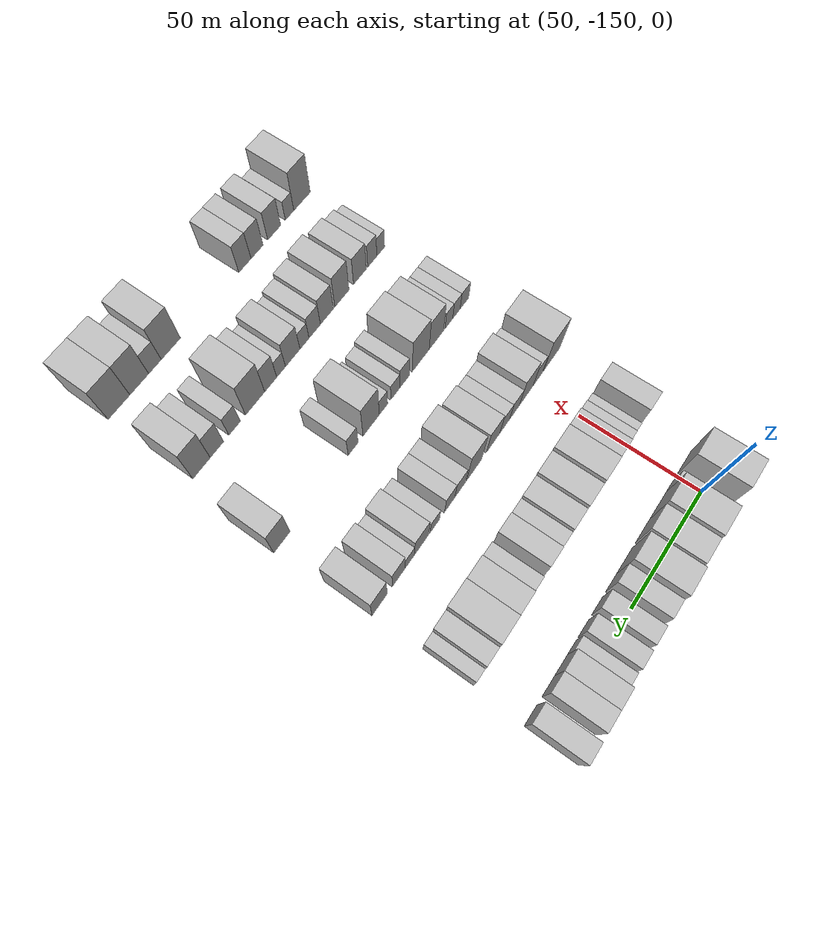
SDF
<sdf version="1.6">
 <world name="default">
  <model name="building_51">
   <static>1</static>
   <pose>50.0000 -155.9210 0 0.000000 0.000000 0.000000</pose>
   <link name="link">
    <pose>0 0 12.00 0 0 0</pose>
    <collision name="collision"><geometry><box><size>20.0000 11.7579 24.0000</size></box></geometry></collision>
    <visual name="visual">
     <cast_shadows>0</cast_shadows>
     <geometry><box><size>20.0000 11.7579 24.0000</size></box></geometry>
     <material>
      <script>
       <uri>model://HANNAS_wall/materials/scripts</uri>
       <uri>model://HANNAS_wall/materials/textures</uri>
       <name>vrc/HANNAS_wall</name>
      </script>
     </material>
    </visual>
   </link>
  </model>
  <model name="building_52">
   <static>1</static>
   <pose>50.0000 -145.2475 0 0.000000 0.000000 0.000000</pose>
   <link name="link">
    <pose>0 0 6.00 0 0 0</pose>
    <collision name="collision"><geometry><box><size>20.0000 5.5891 12.0000</size></box></geometry></collision>
    <visual name="visual">
     <cast_shadows>0</cast_shadows>
     <geometry><box><size>20.0000 5.5891 12.0000</size></box></geometry>
     <material>
      <script>
       <uri>model://HANNAS_wall/materials/scripts</uri>
       <uri>model://HANNAS_wall/materials/textures</uri>
       <name>vrc/HANNAS_wall</name>
      </script>
     </material>
    </visual>
   </link>
  </model>
  <model name="building_53">
   <static>1</static>
   <pose>50.0000 -136.5552 0 0.000000 0.000000 0.000000</pose>
   <link name="link">
    <pose>0 0 12.00 0 0 0</pose>
    <collision name="collision"><geometry><box><size>20.0000 11.7955 24.0000</size></box></geometry></collision>
    <visual name="visual">
     <cast_shadows>0</cast_shadows>
     <geometry><box><size>20.0000 11.7955 24.0000</size></box></geometry>
     <material>
      <script>
       <uri>model://HANNAS_wall/materials/scripts</uri>
       <uri>model://HANNAS_wall/materials/textures</uri>
       <name>vrc/HANNAS_wall</name>
      </script>
     </material>
    </visual>
   </link>
  </model>
  <model name="building_54">
   <static>1</static>
   <pose>50.0000 -125.5416 0 0.000000 0.000000 0.000000</pose>
   <link name="link">
    <pose>0 0 10.50 0 0 0</pose>
    <collision name="collision"><geometry><box><size>20.0000 10.2317 21.0000</size></box></geometry></collision>
    <visual name="visual">
     <cast_shadows>0</cast_shadows>
     <geometry><box><size>20.0000 10.2317 21.0000</size></box></geometry>
     <material>
      <script>
       <uri>model://HANNAS_wall/materials/scripts</uri>
       <uri>model://HANNAS_wall/materials/textures</uri>
       <name>vrc/HANNAS_wall</name>
      </script>
     </material>
    </visual>
   </link>
  </model>
  <model name="building_55">
   <static>1</static>
   <pose>50.0000 -112.9191 0 0.000000 0.000000 0.000000</pose>
   <link name="link">
    <pose>0 0 12.00 0 0 0</pose>
    <collision name="collision"><geometry><box><size>20.0000 11.0133 24.0000</size></box></geometry></collision>
    <visual name="visual">
     <cast_shadows>0</cast_shadows>
     <geometry><box><size>20.0000 11.0133 24.0000</size></box></geometry>
     <material>
      <script>
       <uri>model://HANNAS_wall/materials/scripts</uri>
       <uri>model://HANNAS_wall/materials/textures</uri>
       <name>vrc/HANNAS_wall</name>
      </script>
     </material>
    </visual>
   </link>
  </model>
  <model name="building_56">
   <static>1</static>
   <pose>50.0000 -103.6755 0 0.000000 0.000000 0.000000</pose>
   <link name="link">
    <pose>0 0 9.00 0 0 0</pose>
    <collision name="collision"><geometry><box><size>20.0000 7.4738 18.0000</size></box></geometry></collision>
    <visual name="visual">
     <cast_shadows>0</cast_shadows>
     <geometry><box><size>20.0000 7.4738 18.0000</size></box></geometry>
     <material>
      <script>
       <uri>model://HANNAS_wall/materials/scripts</uri>
       <uri>model://HANNAS_wall/materials/textures</uri>
       <name>vrc/HANNAS_wall</name>
      </script>
     </material>
    </visual>
   </link>
  </model>
  <model name="building_57">
   <static>1</static>
   <pose>50.0000 -94.3220 0 0.000000 0.000000 0.000000</pose>
   <link name="link">
    <pose>0 0 7.50 0 0 0</pose>
    <collision name="collision"><geometry><box><size>20.0000 7.2331 15.0000</size></box></geometry></collision>
    <visual name="visual">
     <cast_shadows>0</cast_shadows>
     <geometry><box><size>20.0000 7.2331 15.0000</size></box></geometry>
     <material>
      <script>
       <uri>model://HANNAS_wall/materials/scripts</uri>
       <uri>model://HANNAS_wall/materials/textures</uri>
       <name>vrc/HANNAS_wall</name>
      </script>
     </material>
    </visual>
   </link>
  </model>
  <model name="building_58">
   <static>1</static>
   <pose>50.0000 -85.2054 0 0.000000 0.000000 0.000000</pose>
   <link name="link">
    <pose>0 0 7.50 0 0 0</pose>
    <collision name="collision"><geometry><box><size>20.0000 7.0001 15.0000</size></box></geometry></collision>
    <visual name="visual">
     <cast_shadows>0</cast_shadows>
     <geometry><box><size>20.0000 7.0001 15.0000</size></box></geometry>
     <material>
      <script>
       <uri>model://HANNAS_wall/materials/scripts</uri>
       <uri>model://HANNAS_wall/materials/textures</uri>
       <name>vrc/HANNAS_wall</name>
      </script>
     </material>
    </visual>
   </link>
  </model>
  <model name="building_59">
   <static>1</static>
   <pose>50.0000 -77.8246 0 0.000000 0.000000 0.000000</pose>
   <link name="link">
    <pose>0 0 6.00 0 0 0</pose>
    <collision name="collision"><geometry><box><size>20.0000 5.7614 12.0000</size></box></geometry></collision>
    <visual name="visual">
     <cast_shadows>0</cast_shadows>
     <geometry><box><size>20.0000 5.7614 12.0000</size></box></geometry>
     <material>
      <script>
       <uri>model://HANNAS_wall/materials/scripts</uri>
       <uri>model://HANNAS_wall/materials/textures</uri>
       <name>vrc/HANNAS_wall</name>
      </script>
     </material>
    </visual>
   </link>
  </model>
  <model name="building_60">
   <static>1</static>
   <pose>50.0000 -70.9079 0 0.000000 0.000000 0.000000</pose>
   <link name="link">
    <pose>0 0 9.00 0 0 0</pose>
    <collision name="collision"><geometry><box><size>20.0000 8.0721 18.0000</size></box></geometry></collision>
    <visual name="visual">
     <cast_shadows>0</cast_shadows>
     <geometry><box><size>20.0000 8.0721 18.0000</size></box></geometry>
     <material>
      <script>
       <uri>model://HANNAS_wall/materials/scripts</uri>
       <uri>model://HANNAS_wall/materials/textures</uri>
       <name>vrc/HANNAS_wall</name>
      </script>
     </material>
    </visual>
   </link>
  </model>
  <model name="building_61">
   <static>1</static>
   <pose>50.0000 -62.8713 0 0.000000 0.000000 0.000000</pose>
   <link name="link">
    <pose>0 0 9.00 0 0 0</pose>
    <collision name="collision"><geometry><box><size>20.0000 8.0012 18.0000</size></box></geometry></collision>
    <visual name="visual">
     <cast_shadows>0</cast_shadows>
     <geometry><box><size>20.0000 8.0012 18.0000</size></box></geometry>
     <material>
      <script>
       <uri>model://HANNAS_wall/materials/scripts</uri>
       <uri>model://HANNAS_wall/materials/textures</uri>
       <name>vrc/HANNAS_wall</name>
      </script>
     </material>
    </visual>
   </link>
  </model>
  <model name="building_62">
   <static>1</static>
   <pose>50.0000 -51.9323 0 0.000000 0.000000 0.000000</pose>
   <link name="link">
    <pose>0 0 9.00 0 0 0</pose>
    <collision name="collision"><geometry><box><size>20.0000 7.8768 18.0000</size></box></geometry></collision>
    <visual name="visual">
     <cast_shadows>0</cast_shadows>
     <geometry><box><size>20.0000 7.8768 18.0000</size></box></geometry>
     <material>
      <script>
       <uri>model://HANNAS_wall/materials/scripts</uri>
       <uri>model://HANNAS_wall/materials/textures</uri>
       <name>vrc/HANNAS_wall</name>
      </script>
     </material>
    </visual>
   </link>
  </model>
  <model name="building_187">
   <static>1</static>
   <pose>90.0000 -162.2411 0 0.000000 0.000000 0.000000</pose>
   <link name="link">
    <pose>0 0 9.00 0 0 0</pose>
    <collision name="collision"><geometry><box><size>20.0000 8.2586 18.0000</size></box></geometry></collision>
    <visual name="visual">
     <cast_shadows>0</cast_shadows>
     <geometry><box><size>20.0000 8.2586 18.0000</size></box></geometry>
     <material>
      <script>
       <uri>model://HANNAS_wall/materials/scripts</uri>
       <uri>model://HANNAS_wall/materials/textures</uri>
       <name>vrc/HANNAS_wall</name>
      </script>
     </material>
    </visual>
   </link>
  </model>
  <model name="building_188">
   <static>1</static>
   <pose>90.0000 -152.6742 0 0.000000 0.000000 0.000000</pose>
   <link name="link">
    <pose>0 0 6.00 0 0 0</pose>
    <collision name="collision"><geometry><box><size>20.0000 4.8751 12.0000</size></box></geometry></collision>
    <visual name="visual">
     <cast_shadows>0</cast_shadows>
     <geometry><box><size>20.0000 4.8751 12.0000</size></box></geometry>
     <material>
      <script>
       <uri>model://HANNAS_wall/materials/scripts</uri>
       <uri>model://HANNAS_wall/materials/textures</uri>
       <name>vrc/HANNAS_wall</name>
      </script>
     </material>
    </visual>
   </link>
  </model>
  <model name="building_189">
   <static>1</static>
   <pose>90.0000 -146.9867 0 0.000000 0.000000 0.000000</pose>
   <link name="link">
    <pose>0 0 7.50 0 0 0</pose>
    <collision name="collision"><geometry><box><size>20.0000 6.5000 15.0000</size></box></geometry></collision>
    <visual name="visual">
     <cast_shadows>0</cast_shadows>
     <geometry><box><size>20.0000 6.5000 15.0000</size></box></geometry>
     <material>
      <script>
       <uri>model://HANNAS_wall/materials/scripts</uri>
       <uri>model://HANNAS_wall/materials/textures</uri>
       <name>vrc/HANNAS_wall</name>
      </script>
     </material>
    </visual>
   </link>
  </model>
  <model name="building_190">
   <static>1</static>
   <pose>90.0000 -139.3783 0 0.000000 0.000000 0.000000</pose>
   <link name="link">
    <pose>0 0 10.50 0 0 0</pose>
    <collision name="collision"><geometry><box><size>20.0000 8.7168 21.0000</size></box></geometry></collision>
    <visual name="visual">
     <cast_shadows>0</cast_shadows>
     <geometry><box><size>20.0000 8.7168 21.0000</size></box></geometry>
     <material>
      <script>
       <uri>model://HANNAS_wall/materials/scripts</uri>
       <uri>model://HANNAS_wall/materials/textures</uri>
       <name>vrc/HANNAS_wall</name>
      </script>
     </material>
    </visual>
   </link>
  </model>
  <model name="building_191">
   <static>1</static>
   <pose>90.0000 -129.9871 0 0.000000 0.000000 0.000000</pose>
   <link name="link">
    <pose>0 0 12.00 0 0 0</pose>
    <collision name="collision"><geometry><box><size>20.0000 10.0657 24.0000</size></box></geometry></collision>
    <visual name="visual">
     <cast_shadows>0</cast_shadows>
     <geometry><box><size>20.0000 10.0657 24.0000</size></box></geometry>
     <material>
      <script>
       <uri>model://HANNAS_wall/materials/scripts</uri>
       <uri>model://HANNAS_wall/materials/textures</uri>
       <name>vrc/HANNAS_wall</name>
      </script>
     </material>
    </visual>
   </link>
  </model>
  <model name="building_192">
   <static>1</static>
   <pose>90.0000 -120.2093 0 0.000000 0.000000 0.000000</pose>
   <link name="link">
    <pose>0 0 10.50 0 0 0</pose>
    <collision name="collision"><geometry><box><size>20.0000 9.4899 21.0000</size></box></geometry></collision>
    <visual name="visual">
     <cast_shadows>0</cast_shadows>
     <geometry><box><size>20.0000 9.4899 21.0000</size></box></geometry>
     <material>
      <script>
       <uri>model://HANNAS_wall/materials/scripts</uri>
       <uri>model://HANNAS_wall/materials/textures</uri>
       <name>vrc/HANNAS_wall</name>
      </script>
     </material>
    </visual>
   </link>
  </model>
  <model name="building_193">
   <static>1</static>
   <pose>90.0000 -111.1364 0 0.000000 0.000000 0.000000</pose>
   <link name="link">
    <pose>0 0 9.00 0 0 0</pose>
    <collision name="collision"><geometry><box><size>20.0000 8.6558 18.0000</size></box></geometry></collision>
    <visual name="visual">
     <cast_shadows>0</cast_shadows>
     <geometry><box><size>20.0000 8.6558 18.0000</size></box></geometry>
     <material>
      <script>
       <uri>model://HANNAS_wall/materials/scripts</uri>
       <uri>model://HANNAS_wall/materials/textures</uri>
       <name>vrc/HANNAS_wall</name>
      </script>
     </material>
    </visual>
   </link>
  </model>
  <model name="building_194">
   <static>1</static>
   <pose>90.0000 -103.3717 0 0.000000 0.000000 0.000000</pose>
   <link name="link">
    <pose>0 0 7.50 0 0 0</pose>
    <collision name="collision"><geometry><box><size>20.0000 6.8735 15.0000</size></box></geometry></collision>
    <visual name="visual">
     <cast_shadows>0</cast_shadows>
     <geometry><box><size>20.0000 6.8735 15.0000</size></box></geometry>
     <material>
      <script>
       <uri>model://HANNAS_wall/materials/scripts</uri>
       <uri>model://HANNAS_wall/materials/textures</uri>
       <name>vrc/HANNAS_wall</name>
      </script>
     </material>
    </visual>
   </link>
  </model>
  <model name="building_195">
   <static>1</static>
   <pose>90.0000 -95.8698 0 0.000000 0.000000 0.000000</pose>
   <link name="link">
    <pose>0 0 9.00 0 0 0</pose>
    <collision name="collision"><geometry><box><size>20.0000 8.1304 18.0000</size></box></geometry></collision>
    <visual name="visual">
     <cast_shadows>0</cast_shadows>
     <geometry><box><size>20.0000 8.1304 18.0000</size></box></geometry>
     <material>
      <script>
       <uri>model://HANNAS_wall/materials/scripts</uri>
       <uri>model://HANNAS_wall/materials/textures</uri>
       <name>vrc/HANNAS_wall</name>
      </script>
     </material>
    </visual>
   </link>
  </model>
  <model name="building_196">
   <static>1</static>
   <pose>90.0000 -85.3242 0 0.000000 0.000000 0.000000</pose>
   <link name="link">
    <pose>0 0 7.50 0 0 0</pose>
    <collision name="collision"><geometry><box><size>20.0000 6.9608 15.0000</size></box></geometry></collision>
    <visual name="visual">
     <cast_shadows>0</cast_shadows>
     <geometry><box><size>20.0000 6.9608 15.0000</size></box></geometry>
     <material>
      <script>
       <uri>model://HANNAS_wall/materials/scripts</uri>
       <uri>model://HANNAS_wall/materials/textures</uri>
       <name>vrc/HANNAS_wall</name>
      </script>
     </material>
    </visual>
   </link>
  </model>
  <model name="building_197">
   <static>1</static>
   <pose>90.0000 -77.0051 0 0.000000 0.000000 0.000000</pose>
   <link name="link">
    <pose>0 0 10.50 0 0 0</pose>
    <collision name="collision"><geometry><box><size>20.0000 9.6773 21.0000</size></box></geometry></collision>
    <visual name="visual">
     <cast_shadows>0</cast_shadows>
     <geometry><box><size>20.0000 9.6773 21.0000</size></box></geometry>
     <material>
      <script>
       <uri>model://HANNAS_wall/materials/scripts</uri>
       <uri>model://HANNAS_wall/materials/textures</uri>
       <name>vrc/HANNAS_wall</name>
      </script>
     </material>
    </visual>
   </link>
  </model>
  <model name="building_198">
   <static>1</static>
   <pose>90.0000 -66.7771 0 0.000000 0.000000 0.000000</pose>
   <link name="link">
    <pose>0 0 12.00 0 0 0</pose>
    <collision name="collision"><geometry><box><size>20.0000 10.7786 24.0000</size></box></geometry></collision>
    <visual name="visual">
     <cast_shadows>0</cast_shadows>
     <geometry><box><size>20.0000 10.7786 24.0000</size></box></geometry>
     <material>
      <script>
       <uri>model://HANNAS_wall/materials/scripts</uri>
       <uri>model://HANNAS_wall/materials/textures</uri>
       <name>vrc/HANNAS_wall</name>
      </script>
     </material>
    </visual>
   </link>
  </model>
  <model name="building_199">
   <static>1</static>
   <pose>90.0000 -57.7729 0 0.000000 0.000000 0.000000</pose>
   <link name="link">
    <pose>0 0 9.00 0 0 0</pose>
    <collision name="collision"><geometry><box><size>20.0000 7.2299 18.0000</size></box></geometry></collision>
    <visual name="visual">
     <cast_shadows>0</cast_shadows>
     <geometry><box><size>20.0000 7.2299 18.0000</size></box></geometry>
     <material>
      <script>
       <uri>model://HANNAS_wall/materials/scripts</uri>
       <uri>model://HANNAS_wall/materials/textures</uri>
       <name>vrc/HANNAS_wall</name>
      </script>
     </material>
    </visual>
   </link>
  </model>
  <model name="building_200">
   <static>1</static>
   <pose>90.0000 -51.6301 0 0.000000 0.000000 0.000000</pose>
   <link name="link">
    <pose>0 0 6.00 0 0 0</pose>
    <collision name="collision"><geometry><box><size>20.0000 5.0556 12.0000</size></box></geometry></collision>
    <visual name="visual">
     <cast_shadows>0</cast_shadows>
     <geometry><box><size>20.0000 5.0556 12.0000</size></box></geometry>
     <material>
      <script>
       <uri>model://HANNAS_wall/materials/scripts</uri>
       <uri>model://HANNAS_wall/materials/textures</uri>
       <name>vrc/HANNAS_wall</name>
      </script>
     </material>
    </visual>
   </link>
  </model>
  <model name="building_326">
   <static>1</static>
   <pose>130.0000 -163.6654 0 0.000000 0.000000 0.000000</pose>
   <link name="link">
    <pose>0 0 12.00 0 0 0</pose>
    <collision name="collision"><geometry><box><size>20.0000 11.8290 24.0000</size></box></geometry></collision>
    <visual name="visual">
     <cast_shadows>0</cast_shadows>
     <geometry><box><size>20.0000 11.8290 24.0000</size></box></geometry>
     <material>
      <script>
       <uri>model://HANNAS_wall/materials/scripts</uri>
       <uri>model://HANNAS_wall/materials/textures</uri>
       <name>vrc/HANNAS_wall</name>
      </script>
     </material>
    </visual>
   </link>
  </model>
  <model name="building_327">
   <static>1</static>
   <pose>130.0000 -153.5609 0 0.000000 0.000000 0.000000</pose>
   <link name="link">
    <pose>0 0 7.50 0 0 0</pose>
    <collision name="collision"><geometry><box><size>20.0000 6.3800 15.0000</size></box></geometry></collision>
    <visual name="visual">
     <cast_shadows>0</cast_shadows>
     <geometry><box><size>20.0000 6.3800 15.0000</size></box></geometry>
     <material>
      <script>
       <uri>model://HANNAS_wall/materials/scripts</uri>
       <uri>model://HANNAS_wall/materials/textures</uri>
       <name>vrc/HANNAS_wall</name>
      </script>
     </material>
    </visual>
   </link>
  </model>
  <model name="building_328">
   <static>1</static>
   <pose>130.0000 -145.5549 0 0.000000 0.000000 0.000000</pose>
   <link name="link">
    <pose>0 0 10.50 0 0 0</pose>
    <collision name="collision"><geometry><box><size>20.0000 9.6319 21.0000</size></box></geometry></collision>
    <visual name="visual">
     <cast_shadows>0</cast_shadows>
     <geometry><box><size>20.0000 9.6319 21.0000</size></box></geometry>
     <material>
      <script>
       <uri>model://HANNAS_wall/materials/scripts</uri>
       <uri>model://HANNAS_wall/materials/textures</uri>
       <name>vrc/HANNAS_wall</name>
      </script>
     </material>
    </visual>
   </link>
  </model>
  <model name="building_329">
   <static>1</static>
   <pose>130.0000 -137.3387 0 0.000000 0.000000 0.000000</pose>
   <link name="link">
    <pose>0 0 7.50 0 0 0</pose>
    <collision name="collision"><geometry><box><size>20.0000 6.8004 15.0000</size></box></geometry></collision>
    <visual name="visual">
     <cast_shadows>0</cast_shadows>
     <geometry><box><size>20.0000 6.8004 15.0000</size></box></geometry>
     <material>
      <script>
       <uri>model://HANNAS_wall/materials/scripts</uri>
       <uri>model://HANNAS_wall/materials/textures</uri>
       <name>vrc/HANNAS_wall</name>
      </script>
     </material>
    </visual>
   </link>
  </model>
  <model name="building_330">
   <static>1</static>
   <pose>130.0000 -130.6627 0 0.000000 0.000000 0.000000</pose>
   <link name="link">
    <pose>0 0 7.50 0 0 0</pose>
    <collision name="collision"><geometry><box><size>20.0000 6.5516 15.0000</size></box></geometry></collision>
    <visual name="visual">
     <cast_shadows>0</cast_shadows>
     <geometry><box><size>20.0000 6.5516 15.0000</size></box></geometry>
     <material>
      <script>
       <uri>model://HANNAS_wall/materials/scripts</uri>
       <uri>model://HANNAS_wall/materials/textures</uri>
       <name>vrc/HANNAS_wall</name>
      </script>
     </material>
    </visual>
   </link>
  </model>
  <model name="building_331">
   <static>1</static>
   <pose>130.0000 -122.9548 0 0.000000 0.000000 0.000000</pose>
   <link name="link">
    <pose>0 0 9.00 0 0 0</pose>
    <collision name="collision"><geometry><box><size>20.0000 8.8642 18.0000</size></box></geometry></collision>
    <visual name="visual">
     <cast_shadows>0</cast_shadows>
     <geometry><box><size>20.0000 8.8642 18.0000</size></box></geometry>
     <material>
      <script>
       <uri>model://HANNAS_wall/materials/scripts</uri>
       <uri>model://HANNAS_wall/materials/textures</uri>
       <name>vrc/HANNAS_wall</name>
      </script>
     </material>
    </visual>
   </link>
  </model>
  <model name="building_332">
   <static>1</static>
   <pose>130.0000 -110.6508 0 0.000000 0.000000 0.000000</pose>
   <link name="link">
    <pose>0 0 12.00 0 0 0</pose>
    <collision name="collision"><geometry><box><size>20.0000 9.7439 24.0000</size></box></geometry></collision>
    <visual name="visual">
     <cast_shadows>0</cast_shadows>
     <geometry><box><size>20.0000 9.7439 24.0000</size></box></geometry>
     <material>
      <script>
       <uri>model://HANNAS_wall/materials/scripts</uri>
       <uri>model://HANNAS_wall/materials/textures</uri>
       <name>vrc/HANNAS_wall</name>
      </script>
     </material>
    </visual>
   </link>
  </model>
  <model name="building_333">
   <static>1</static>
   <pose>130.0000 -101.4452 0 0.000000 0.000000 0.000000</pose>
   <link name="link">
    <pose>0 0 7.50 0 0 0</pose>
    <collision name="collision"><geometry><box><size>20.0000 6.6672 15.0000</size></box></geometry></collision>
    <visual name="visual">
     <cast_shadows>0</cast_shadows>
     <geometry><box><size>20.0000 6.6672 15.0000</size></box></geometry>
     <material>
      <script>
       <uri>model://HANNAS_wall/materials/scripts</uri>
       <uri>model://HANNAS_wall/materials/textures</uri>
       <name>vrc/HANNAS_wall</name>
      </script>
     </material>
    </visual>
   </link>
  </model>
  <model name="building_334">
   <static>1</static>
   <pose>130.0000 -94.8186 0 0.000000 0.000000 0.000000</pose>
   <link name="link">
    <pose>0 0 7.50 0 0 0</pose>
    <collision name="collision"><geometry><box><size>20.0000 6.5860 15.0000</size></box></geometry></collision>
    <visual name="visual">
     <cast_shadows>0</cast_shadows>
     <geometry><box><size>20.0000 6.5860 15.0000</size></box></geometry>
     <material>
      <script>
       <uri>model://HANNAS_wall/materials/scripts</uri>
       <uri>model://HANNAS_wall/materials/textures</uri>
       <name>vrc/HANNAS_wall</name>
      </script>
     </material>
    </visual>
   </link>
  </model>
  <model name="building_335">
   <static>1</static>
   <pose>130.0000 -85.6121 0 0.000000 0.000000 0.000000</pose>
   <link name="link">
    <pose>0 0 6.00 0 0 0</pose>
    <collision name="collision"><geometry><box><size>20.0000 5.8269 12.0000</size></box></geometry></collision>
    <visual name="visual">
     <cast_shadows>0</cast_shadows>
     <geometry><box><size>20.0000 5.8269 12.0000</size></box></geometry>
     <material>
      <script>
       <uri>model://HANNAS_wall/materials/scripts</uri>
       <uri>model://HANNAS_wall/materials/textures</uri>
       <name>vrc/HANNAS_wall</name>
      </script>
     </material>
    </visual>
   </link>
  </model>
  <model name="building_336">
   <static>1</static>
   <pose>130.0000 -77.3997 0 0.000000 0.000000 0.000000</pose>
   <link name="link">
    <pose>0 0 9.00 0 0 0</pose>
    <collision name="collision"><geometry><box><size>20.0000 8.5981 18.0000</size></box></geometry></collision>
    <visual name="visual">
     <cast_shadows>0</cast_shadows>
     <geometry><box><size>20.0000 8.5981 18.0000</size></box></geometry>
     <material>
      <script>
       <uri>model://HANNAS_wall/materials/scripts</uri>
       <uri>model://HANNAS_wall/materials/textures</uri>
       <name>vrc/HANNAS_wall</name>
      </script>
     </material>
    </visual>
   </link>
  </model>
  <model name="building_337">
   <static>1</static>
   <pose>130.0000 -70.2908 0 0.000000 0.000000 0.000000</pose>
   <link name="link">
    <pose>0 0 6.00 0 0 0</pose>
    <collision name="collision"><geometry><box><size>20.0000 5.6197 12.0000</size></box></geometry></collision>
    <visual name="visual">
     <cast_shadows>0</cast_shadows>
     <geometry><box><size>20.0000 5.6197 12.0000</size></box></geometry>
     <material>
      <script>
       <uri>model://HANNAS_wall/materials/scripts</uri>
       <uri>model://HANNAS_wall/materials/textures</uri>
       <name>vrc/HANNAS_wall</name>
      </script>
     </material>
    </visual>
   </link>
  </model>
  <model name="building_338">
   <static>1</static>
   <pose>130.0000 -63.7363 0 0.000000 0.000000 0.000000</pose>
   <link name="link">
    <pose>0 0 9.00 0 0 0</pose>
    <collision name="collision"><geometry><box><size>20.0000 7.4892 18.0000</size></box></geometry></collision>
    <visual name="visual">
     <cast_shadows>0</cast_shadows>
     <geometry><box><size>20.0000 7.4892 18.0000</size></box></geometry>
     <material>
      <script>
       <uri>model://HANNAS_wall/materials/scripts</uri>
       <uri>model://HANNAS_wall/materials/textures</uri>
       <name>vrc/HANNAS_wall</name>
      </script>
     </material>
    </visual>
   </link>
  </model>
  <model name="building_339">
   <static>1</static>
   <pose>130.0000 -52.6185 0 0.000000 0.000000 0.000000</pose>
   <link name="link">
    <pose>0 0 10.50 0 0 0</pose>
    <collision name="collision"><geometry><box><size>20.0000 8.7463 21.0000</size></box></geometry></collision>
    <visual name="visual">
     <cast_shadows>0</cast_shadows>
     <geometry><box><size>20.0000 8.7463 21.0000</size></box></geometry>
     <material>
      <script>
       <uri>model://HANNAS_wall/materials/scripts</uri>
       <uri>model://HANNAS_wall/materials/textures</uri>
       <name>vrc/HANNAS_wall</name>
      </script>
     </material>
    </visual>
   </link>
  </model>
  <model name="building_462">
   <static>1</static>
   <pose>170.0000 -164.9193 0 0.000000 0.000000 0.000000</pose>
   <link name="link">
    <pose>0 0 6.00 0 0 0</pose>
    <collision name="collision"><geometry><box><size>20.0000 5.9095 12.0000</size></box></geometry></collision>
    <visual name="visual">
     <cast_shadows>0</cast_shadows>
     <geometry><box><size>20.0000 5.9095 12.0000</size></box></geometry>
     <material>
      <script>
       <uri>model://HANNAS_wall/materials/scripts</uri>
       <uri>model://HANNAS_wall/materials/textures</uri>
       <name>vrc/HANNAS_wall</name>
      </script>
     </material>
    </visual>
   </link>
  </model>
  <model name="building_463">
   <static>1</static>
   <pose>170.0000 -159.3668 0 0.000000 0.000000 0.000000</pose>
   <link name="link">
    <pose>0 0 6.00 0 0 0</pose>
    <collision name="collision"><geometry><box><size>20.0000 5.1955 12.0000</size></box></geometry></collision>
    <visual name="visual">
     <cast_shadows>0</cast_shadows>
     <geometry><box><size>20.0000 5.1955 12.0000</size></box></geometry>
     <material>
      <script>
       <uri>model://HANNAS_wall/materials/scripts</uri>
       <uri>model://HANNAS_wall/materials/textures</uri>
       <name>vrc/HANNAS_wall</name>
      </script>
     </material>
    </visual>
   </link>
  </model>
  <model name="building_464">
   <static>1</static>
   <pose>170.0000 -154.1323 0 0.000000 0.000000 0.000000</pose>
   <link name="link">
    <pose>0 0 6.00 0 0 0</pose>
    <collision name="collision"><geometry><box><size>20.0000 5.2735 12.0000</size></box></geometry></collision>
    <visual name="visual">
     <cast_shadows>0</cast_shadows>
     <geometry><box><size>20.0000 5.2735 12.0000</size></box></geometry>
     <material>
      <script>
       <uri>model://HANNAS_wall/materials/scripts</uri>
       <uri>model://HANNAS_wall/materials/textures</uri>
       <name>vrc/HANNAS_wall</name>
      </script>
     </material>
    </visual>
   </link>
  </model>
  <model name="building_465">
   <static>1</static>
   <pose>170.0000 -145.6856 0 0.000000 0.000000 0.000000</pose>
   <link name="link">
    <pose>0 0 10.50 0 0 0</pose>
    <collision name="collision"><geometry><box><size>20.0000 9.6199 21.0000</size></box></geometry></collision>
    <visual name="visual">
     <cast_shadows>0</cast_shadows>
     <geometry><box><size>20.0000 9.6199 21.0000</size></box></geometry>
     <material>
      <script>
       <uri>model://HANNAS_wall/materials/scripts</uri>
       <uri>model://HANNAS_wall/materials/textures</uri>
       <name>vrc/HANNAS_wall</name>
      </script>
     </material>
    </visual>
   </link>
  </model>
  <model name="building_466">
   <static>1</static>
   <pose>170.0000 -135.2349 0 0.000000 0.000000 0.000000</pose>
   <link name="link">
    <pose>0 0 12.00 0 0 0</pose>
    <collision name="collision"><geometry><box><size>20.0000 11.2814 24.0000</size></box></geometry></collision>
    <visual name="visual">
     <cast_shadows>0</cast_shadows>
     <geometry><box><size>20.0000 11.2814 24.0000</size></box></geometry>
     <material>
      <script>
       <uri>model://HANNAS_wall/materials/scripts</uri>
       <uri>model://HANNAS_wall/materials/textures</uri>
       <name>vrc/HANNAS_wall</name>
      </script>
     </material>
    </visual>
   </link>
  </model>
  <model name="building_467">
   <static>1</static>
   <pose>170.0000 -124.5642 0 0.000000 0.000000 0.000000</pose>
   <link name="link">
    <pose>0 0 7.50 0 0 0</pose>
    <collision name="collision"><geometry><box><size>20.0000 6.0600 15.0000</size></box></geometry></collision>
    <visual name="visual">
     <cast_shadows>0</cast_shadows>
     <geometry><box><size>20.0000 6.0600 15.0000</size></box></geometry>
     <material>
      <script>
       <uri>model://HANNAS_wall/materials/scripts</uri>
       <uri>model://HANNAS_wall/materials/textures</uri>
       <name>vrc/HANNAS_wall</name>
      </script>
     </material>
    </visual>
   </link>
  </model>
  <model name="building_468">
   <static>1</static>
   <pose>170.0000 -118.6133 0 0.000000 0.000000 0.000000</pose>
   <link name="link">
    <pose>0 0 6.00 0 0 0</pose>
    <collision name="collision"><geometry><box><size>20.0000 5.8417 12.0000</size></box></geometry></collision>
    <visual name="visual">
     <cast_shadows>0</cast_shadows>
     <geometry><box><size>20.0000 5.8417 12.0000</size></box></geometry>
     <material>
      <script>
       <uri>model://HANNAS_wall/materials/scripts</uri>
       <uri>model://HANNAS_wall/materials/textures</uri>
       <name>vrc/HANNAS_wall</name>
      </script>
     </material>
    </visual>
   </link>
  </model>
  <model name="building_469">
   <static>1</static>
   <pose>170.0000 -111.0324 0 0.000000 0.000000 0.000000</pose>
   <link name="link">
    <pose>0 0 6.00 0 0 0</pose>
    <collision name="collision"><geometry><box><size>20.0000 5.3202 12.0000</size></box></geometry></collision>
    <visual name="visual">
     <cast_shadows>0</cast_shadows>
     <geometry><box><size>20.0000 5.3202 12.0000</size></box></geometry>
     <material>
      <script>
       <uri>model://HANNAS_wall/materials/scripts</uri>
       <uri>model://HANNAS_wall/materials/textures</uri>
       <name>vrc/HANNAS_wall</name>
      </script>
     </material>
    </visual>
   </link>
  </model>
  <model name="building_470">
   <static>1</static>
   <pose>170.0000 -103.3515 0 0.000000 0.000000 0.000000</pose>
   <link name="link">
    <pose>0 0 12.00 0 0 0</pose>
    <collision name="collision"><geometry><box><size>20.0000 10.0414 24.0000</size></box></geometry></collision>
    <visual name="visual">
     <cast_shadows>0</cast_shadows>
     <geometry><box><size>20.0000 10.0414 24.0000</size></box></geometry>
     <material>
      <script>
       <uri>model://HANNAS_wall/materials/scripts</uri>
       <uri>model://HANNAS_wall/materials/textures</uri>
       <name>vrc/HANNAS_wall</name>
      </script>
     </material>
    </visual>
   </link>
  </model>
  <model name="building_471">
   <static>1</static>
   <pose>170.0000 -92.3118 0 0.000000 0.000000 0.000000</pose>
   <link name="link">
    <pose>0 0 7.50 0 0 0</pose>
    <collision name="collision"><geometry><box><size>20.0000 6.0380 15.0000</size></box></geometry></collision>
    <visual name="visual">
     <cast_shadows>0</cast_shadows>
     <geometry><box><size>20.0000 6.0380 15.0000</size></box></geometry>
     <material>
      <script>
       <uri>model://HANNAS_wall/materials/scripts</uri>
       <uri>model://HANNAS_wall/materials/textures</uri>
       <name>vrc/HANNAS_wall</name>
      </script>
     </material>
    </visual>
   </link>
  </model>
  <model name="building_472">
   <static>1</static>
   <pose>170.0000 -50.6620 0 0.000000 0.000000 0.000000</pose>
   <link name="link">
    <pose>0 0 10.50 0 0 0</pose>
    <collision name="collision"><geometry><box><size>20.0000 9.0872 21.0000</size></box></geometry></collision>
    <visual name="visual">
     <cast_shadows>0</cast_shadows>
     <geometry><box><size>20.0000 9.0872 21.0000</size></box></geometry>
     <material>
      <script>
       <uri>model://HANNAS_wall/materials/scripts</uri>
       <uri>model://HANNAS_wall/materials/textures</uri>
       <name>vrc/HANNAS_wall</name>
      </script>
     </material>
    </visual>
   </link>
  </model>
  <model name="building_594">
   <static>1</static>
   <pose>210.0000 -165.4284 0 0.000000 0.000000 0.000000</pose>
   <link name="link">
    <pose>0 0 6.00 0 0 0</pose>
    <collision name="collision"><geometry><box><size>20.0000 5.3279 12.0000</size></box></geometry></collision>
    <visual name="visual">
     <cast_shadows>0</cast_shadows>
     <geometry><box><size>20.0000 5.3279 12.0000</size></box></geometry>
     <material>
      <script>
       <uri>model://HANNAS_wall/materials/scripts</uri>
       <uri>model://HANNAS_wall/materials/textures</uri>
       <name>vrc/HANNAS_wall</name>
      </script>
     </material>
    </visual>
   </link>
  </model>
  <model name="building_595">
   <static>1</static>
   <pose>210.0000 -159.6969 0 0.000000 0.000000 0.000000</pose>
   <link name="link">
    <pose>0 0 7.50 0 0 0</pose>
    <collision name="collision"><geometry><box><size>20.0000 6.1351 15.0000</size></box></geometry></collision>
    <visual name="visual">
     <cast_shadows>0</cast_shadows>
     <geometry><box><size>20.0000 6.1351 15.0000</size></box></geometry>
     <material>
      <script>
       <uri>model://HANNAS_wall/materials/scripts</uri>
       <uri>model://HANNAS_wall/materials/textures</uri>
       <name>vrc/HANNAS_wall</name>
      </script>
     </material>
    </visual>
   </link>
  </model>
  <model name="building_596">
   <static>1</static>
   <pose>210.0000 -151.4278 0 0.000000 0.000000 0.000000</pose>
   <link name="link">
    <pose>0 0 9.00 0 0 0</pose>
    <collision name="collision"><geometry><box><size>20.0000 8.4032 18.0000</size></box></geometry></collision>
    <visual name="visual">
     <cast_shadows>0</cast_shadows>
     <geometry><box><size>20.0000 8.4032 18.0000</size></box></geometry>
     <material>
      <script>
       <uri>model://HANNAS_wall/materials/scripts</uri>
       <uri>model://HANNAS_wall/materials/textures</uri>
       <name>vrc/HANNAS_wall</name>
      </script>
     </material>
    </visual>
   </link>
  </model>
  <model name="building_597">
   <static>1</static>
   <pose>210.0000 -139.6188 0 0.000000 0.000000 0.000000</pose>
   <link name="link">
    <pose>0 0 10.50 0 0 0</pose>
    <collision name="collision"><geometry><box><size>20.0000 9.2147 21.0000</size></box></geometry></collision>
    <visual name="visual">
     <cast_shadows>0</cast_shadows>
     <geometry><box><size>20.0000 9.2147 21.0000</size></box></geometry>
     <material>
      <script>
       <uri>model://HANNAS_wall/materials/scripts</uri>
       <uri>model://HANNAS_wall/materials/textures</uri>
       <name>vrc/HANNAS_wall</name>
      </script>
     </material>
    </visual>
   </link>
  </model>
  <model name="building_598">
   <static>1</static>
   <pose>210.0000 -129.8969 0 0.000000 0.000000 0.000000</pose>
   <link name="link">
    <pose>0 0 9.00 0 0 0</pose>
    <collision name="collision"><geometry><box><size>20.0000 8.2292 18.0000</size></box></geometry></collision>
    <visual name="visual">
     <cast_shadows>0</cast_shadows>
     <geometry><box><size>20.0000 8.2292 18.0000</size></box></geometry>
     <material>
      <script>
       <uri>model://HANNAS_wall/materials/scripts</uri>
       <uri>model://HANNAS_wall/materials/textures</uri>
       <name>vrc/HANNAS_wall</name>
      </script>
     </material>
    </visual>
   </link>
  </model>
  <model name="building_599">
   <static>1</static>
   <pose>210.0000 -122.2028 0 0.000000 0.000000 0.000000</pose>
   <link name="link">
    <pose>0 0 7.50 0 0 0</pose>
    <collision name="collision"><geometry><box><size>20.0000 7.1590 15.0000</size></box></geometry></collision>
    <visual name="visual">
     <cast_shadows>0</cast_shadows>
     <geometry><box><size>20.0000 7.1590 15.0000</size></box></geometry>
     <material>
      <script>
       <uri>model://HANNAS_wall/materials/scripts</uri>
       <uri>model://HANNAS_wall/materials/textures</uri>
       <name>vrc/HANNAS_wall</name>
      </script>
     </material>
    </visual>
   </link>
  </model>
  <model name="building_600">
   <static>1</static>
   <pose>210.0000 -115.8127 0 0.000000 0.000000 0.000000</pose>
   <link name="link">
    <pose>0 0 6.00 0 0 0</pose>
    <collision name="collision"><geometry><box><size>20.0000 5.6213 12.0000</size></box></geometry></collision>
    <visual name="visual">
     <cast_shadows>0</cast_shadows>
     <geometry><box><size>20.0000 5.6213 12.0000</size></box></geometry>
     <material>
      <script>
       <uri>model://HANNAS_wall/materials/scripts</uri>
       <uri>model://HANNAS_wall/materials/textures</uri>
       <name>vrc/HANNAS_wall</name>
      </script>
     </material>
    </visual>
   </link>
  </model>
  <model name="building_601">
   <static>1</static>
   <pose>210.0000 -108.5495 0 0.000000 0.000000 0.000000</pose>
   <link name="link">
    <pose>0 0 9.00 0 0 0</pose>
    <collision name="collision"><geometry><box><size>20.0000 8.9051 18.0000</size></box></geometry></collision>
    <visual name="visual">
     <cast_shadows>0</cast_shadows>
     <geometry><box><size>20.0000 8.9051 18.0000</size></box></geometry>
     <material>
      <script>
       <uri>model://HANNAS_wall/materials/scripts</uri>
       <uri>model://HANNAS_wall/materials/textures</uri>
       <name>vrc/HANNAS_wall</name>
      </script>
     </material>
    </visual>
   </link>
  </model>
  <model name="building_602">
   <static>1</static>
   <pose>210.0000 -101.4626 0 0.000000 0.000000 0.000000</pose>
   <link name="link">
    <pose>0 0 6.00 0 0 0</pose>
    <collision name="collision"><geometry><box><size>20.0000 5.2687 12.0000</size></box></geometry></collision>
    <visual name="visual">
     <cast_shadows>0</cast_shadows>
     <geometry><box><size>20.0000 5.2687 12.0000</size></box></geometry>
     <material>
      <script>
       <uri>model://HANNAS_wall/materials/scripts</uri>
       <uri>model://HANNAS_wall/materials/textures</uri>
       <name>vrc/HANNAS_wall</name>
      </script>
     </material>
    </visual>
   </link>
  </model>
  <model name="building_603">
   <static>1</static>
   <pose>210.0000 -95.2088 0 0.000000 0.000000 0.000000</pose>
   <link name="link">
    <pose>0 0 9.00 0 0 0</pose>
    <collision name="collision"><geometry><box><size>20.0000 7.2388 18.0000</size></box></geometry></collision>
    <visual name="visual">
     <cast_shadows>0</cast_shadows>
     <geometry><box><size>20.0000 7.2388 18.0000</size></box></geometry>
     <material>
      <script>
       <uri>model://HANNAS_wall/materials/scripts</uri>
       <uri>model://HANNAS_wall/materials/textures</uri>
       <name>vrc/HANNAS_wall</name>
      </script>
     </material>
    </visual>
   </link>
  </model>
  <model name="building_604">
   <static>1</static>
   <pose>210.0000 -85.9418 0 0.000000 0.000000 0.000000</pose>
   <link name="link">
    <pose>0 0 12.00 0 0 0</pose>
    <collision name="collision"><geometry><box><size>20.0000 11.2952 24.0000</size></box></geometry></collision>
    <visual name="visual">
     <cast_shadows>0</cast_shadows>
     <geometry><box><size>20.0000 11.2952 24.0000</size></box></geometry>
     <material>
      <script>
       <uri>model://HANNAS_wall/materials/scripts</uri>
       <uri>model://HANNAS_wall/materials/textures</uri>
       <name>vrc/HANNAS_wall</name>
      </script>
     </material>
    </visual>
   </link>
  </model>
  <model name="building_605">
   <static>1</static>
   <pose>210.0000 -74.0047 0 0.000000 0.000000 0.000000</pose>
   <link name="link">
    <pose>0 0 7.50 0 0 0</pose>
    <collision name="collision"><geometry><box><size>20.0000 6.5790 15.0000</size></box></geometry></collision>
    <visual name="visual">
     <cast_shadows>0</cast_shadows>
     <geometry><box><size>20.0000 6.5790 15.0000</size></box></geometry>
     <material>
      <script>
       <uri>model://HANNAS_wall/materials/scripts</uri>
       <uri>model://HANNAS_wall/materials/textures</uri>
       <name>vrc/HANNAS_wall</name>
      </script>
     </material>
    </visual>
   </link>
  </model>
  <model name="building_606">
   <static>1</static>
   <pose>210.0000 -63.9519 0 0.000000 0.000000 0.000000</pose>
   <link name="link">
    <pose>0 0 9.00 0 0 0</pose>
    <collision name="collision"><geometry><box><size>20.0000 7.5267 18.0000</size></box></geometry></collision>
    <visual name="visual">
     <cast_shadows>0</cast_shadows>
     <geometry><box><size>20.0000 7.5267 18.0000</size></box></geometry>
     <material>
      <script>
       <uri>model://HANNAS_wall/materials/scripts</uri>
       <uri>model://HANNAS_wall/materials/textures</uri>
       <name>vrc/HANNAS_wall</name>
      </script>
     </material>
    </visual>
   </link>
  </model>
  <model name="building_607">
   <static>1</static>
   <pose>210.0000 -55.3757 0 0.000000 0.000000 0.000000</pose>
   <link name="link">
    <pose>0 0 12.00 0 0 0</pose>
    <collision name="collision"><geometry><box><size>20.0000 9.6257 24.0000</size></box></geometry></collision>
    <visual name="visual">
     <cast_shadows>0</cast_shadows>
     <geometry><box><size>20.0000 9.6257 24.0000</size></box></geometry>
     <material>
      <script>
       <uri>model://HANNAS_wall/materials/scripts</uri>
       <uri>model://HANNAS_wall/materials/textures</uri>
       <name>vrc/HANNAS_wall</name>
      </script>
     </material>
    </visual>
   </link>
  </model>
  <model name="building_733">
   <static>1</static>
   <pose>250.0000 -166.4933 0 0.000000 0.000000 0.000000</pose>
   <link name="link">
    <pose>0 0 12.00 0 0 0</pose>
    <collision name="collision"><geometry><box><size>20.0000 10.9258 24.0000</size></box></geometry></collision>
    <visual name="visual">
     <cast_shadows>0</cast_shadows>
     <geometry><box><size>20.0000 10.9258 24.0000</size></box></geometry>
     <material>
      <script>
       <uri>model://HANNAS_wall/materials/scripts</uri>
       <uri>model://HANNAS_wall/materials/textures</uri>
       <name>vrc/HANNAS_wall</name>
      </script>
     </material>
    </visual>
   </link>
  </model>
  <model name="building_734">
   <static>1</static>
   <pose>250.0000 -158.2296 0 0.000000 0.000000 0.000000</pose>
   <link name="link">
    <pose>0 0 6.00 0 0 0</pose>
    <collision name="collision"><geometry><box><size>20.0000 5.6015 12.0000</size></box></geometry></collision>
    <visual name="visual">
     <cast_shadows>0</cast_shadows>
     <geometry><box><size>20.0000 5.6015 12.0000</size></box></geometry>
     <material>
      <script>
       <uri>model://HANNAS_wall/materials/scripts</uri>
       <uri>model://HANNAS_wall/materials/textures</uri>
       <name>vrc/HANNAS_wall</name>
      </script>
     </material>
    </visual>
   </link>
  </model>
  <model name="building_735">
   <static>1</static>
   <pose>250.0000 -148.2365 0 0.000000 0.000000 0.000000</pose>
   <link name="link">
    <pose>0 0 9.00 0 0 0</pose>
    <collision name="collision"><geometry><box><size>20.0000 8.3848 18.0000</size></box></geometry></collision>
    <visual name="visual">
     <cast_shadows>0</cast_shadows>
     <geometry><box><size>20.0000 8.3848 18.0000</size></box></geometry>
     <material>
      <script>
       <uri>model://HANNAS_wall/materials/scripts</uri>
       <uri>model://HANNAS_wall/materials/textures</uri>
       <name>vrc/HANNAS_wall</name>
      </script>
     </material>
    </visual>
   </link>
  </model>
  <model name="building_736">
   <static>1</static>
   <pose>250.0000 -137.2313 0 0.000000 0.000000 0.000000</pose>
   <link name="link">
    <pose>0 0 9.00 0 0 0</pose>
    <collision name="collision"><geometry><box><size>20.0000 7.6256 18.0000</size></box></geometry></collision>
    <visual name="visual">
     <cast_shadows>0</cast_shadows>
     <geometry><box><size>20.0000 7.6256 18.0000</size></box></geometry>
     <material>
      <script>
       <uri>model://HANNAS_wall/materials/scripts</uri>
       <uri>model://HANNAS_wall/materials/textures</uri>
       <name>vrc/HANNAS_wall</name>
      </script>
     </material>
    </visual>
   </link>
  </model>
  <model name="building_737">
   <static>1</static>
   <pose>250.0000 -129.5737 0 0.000000 0.000000 0.000000</pose>
   <link name="link">
    <pose>0 0 9.00 0 0 0</pose>
    <collision name="collision"><geometry><box><size>20.0000 7.6896 18.0000</size></box></geometry></collision>
    <visual name="visual">
     <cast_shadows>0</cast_shadows>
     <geometry><box><size>20.0000 7.6896 18.0000</size></box></geometry>
     <material>
      <script>
       <uri>model://HANNAS_wall/materials/scripts</uri>
       <uri>model://HANNAS_wall/materials/textures</uri>
       <name>vrc/HANNAS_wall</name>
      </script>
     </material>
    </visual>
   </link>
  </model>
  <model name="building_738">
   <static>1</static>
   <pose>250.0000 -85.1531 0 0.000000 0.000000 0.000000</pose>
   <link name="link">
    <pose>0 0 12.00 0 0 0</pose>
    <collision name="collision"><geometry><box><size>20.0000 11.0505 24.0000</size></box></geometry></collision>
    <visual name="visual">
     <cast_shadows>0</cast_shadows>
     <geometry><box><size>20.0000 11.0505 24.0000</size></box></geometry>
     <material>
      <script>
       <uri>model://HANNAS_wall/materials/scripts</uri>
       <uri>model://HANNAS_wall/materials/textures</uri>
       <name>vrc/HANNAS_wall</name>
      </script>
     </material>
    </visual>
   </link>
  </model>
  <model name="building_739">
   <static>1</static>
   <pose>250.0000 -76.0749 0 0.000000 0.000000 0.000000</pose>
   <link name="link">
    <pose>0 0 7.50 0 0 0</pose>
    <collision name="collision"><geometry><box><size>20.0000 7.1059 15.0000</size></box></geometry></collision>
    <visual name="visual">
     <cast_shadows>0</cast_shadows>
     <geometry><box><size>20.0000 7.1059 15.0000</size></box></geometry>
     <material>
      <script>
       <uri>model://HANNAS_wall/materials/scripts</uri>
       <uri>model://HANNAS_wall/materials/textures</uri>
       <name>vrc/HANNAS_wall</name>
      </script>
     </material>
    </visual>
   </link>
  </model>
  <model name="building_740">
   <static>1</static>
   <pose>250.0000 -67.2883 0 0.000000 0.000000 0.000000</pose>
   <link name="link">
    <pose>0 0 12.00 0 0 0</pose>
    <collision name="collision"><geometry><box><size>20.0000 10.4674 24.0000</size></box></geometry></collision>
    <visual name="visual">
     <cast_shadows>0</cast_shadows>
     <geometry><box><size>20.0000 10.4674 24.0000</size></box></geometry>
     <material>
      <script>
       <uri>model://HANNAS_wall/materials/scripts</uri>
       <uri>model://HANNAS_wall/materials/textures</uri>
       <name>vrc/HANNAS_wall</name>
      </script>
     </material>
    </visual>
   </link>
  </model>
  <model name="building_741">
   <static>1</static>
   <pose>250.0000 -56.1126 0 0.000000 0.000000 0.000000</pose>
   <link name="link">
    <pose>0 0 12.00 0 0 0</pose>
    <collision name="collision"><geometry><box><size>20.0000 11.8840 24.0000</size></box></geometry></collision>
    <visual name="visual">
     <cast_shadows>0</cast_shadows>
     <geometry><box><size>20.0000 11.8840 24.0000</size></box></geometry>
     <material>
      <script>
       <uri>model://HANNAS_wall/materials/scripts</uri>
       <uri>model://HANNAS_wall/materials/textures</uri>
       <name>vrc/HANNAS_wall</name>
      </script>
     </material>
    </visual>
   </link>
  </model>
 </world>
</sdf>
